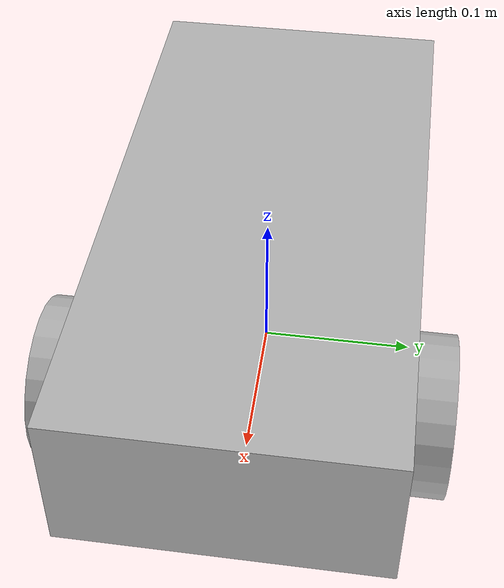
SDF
<?xml version='1.0'?>
<sdf version='1.4'>
  <model name="bitbot">

     <static>false</static>
    <link name='chassis'>
      <inertial>
        <mass>0.007</mass>
        <inertia>
          <ixx>0.0041667</ixx>       <!-- for a box: ixx = 0.083 * mass * (y*y + z*z) -->
          <ixy>0.0</ixy>         <!-- for a box: ixy = 0 -->
          <ixz>0.0</ixz>         <!-- for a box: ixz = 0 -->
          <iyy>0.0141667</iyy>       <!-- for a box: iyy = 0.083 * mass * (x*x + z*z) -->
          <iyz>0.0</iyz>         <!-- for a box: iyz = 0 -->
          <izz>0.0166667</izz>       <!-- for a box: izz = 0.083 * mass * (x*x + y*y) -->
        </inertia>
      </inertial>

      <pose>0 0 .075 0 0 0</pose>
      <collision name='collision'>
        <geometry>
          <box>
            <size>.4 .2 .1</size>
          </box>
        </geometry>
      </collision>
      <visual name='visual'>
        <geometry>
          <box>
            <size>.4 .2 .1</size>
          </box>
        </geometry>
      </visual>

      <collision name='caster_collision'>
        <pose>-0.15 0 -0.05 0 0 0</pose>
        <geometry>
          <sphere>
            <radius>.025</radius>
          </sphere>
        </geometry>

        <surface>
          <friction>
            <ode>
              <mu>0</mu>
              <mu2>0</mu2>
              <slip1>1.0</slip1>
              <slip2>1.0</slip2>
            </ode>
          </friction>
        </surface>
      </collision>

      <visual name='caster_visual'>
        <pose>-0.15 0 -0.05 0 0 0</pose>
        <geometry>
          <sphere>
            <radius>.025</radius>
          </sphere>
        </geometry>
      </visual>
    </link>

    <link name="left_wheel">
      <pose>0.1 0.1125 0.05 0 1.5707 1.5707</pose>
      <inertial>
          <mass>0.2</mass>
          <inertia>
            <ixx>0.000677083</ixx>
            <iyy>0.000677083</iyy>
            <izz>0.0003125</izz>
            <ixy>0</ixy>
            <ixz>0</ixz>
            <iyz>0</iyz>
          </inertia>
        </inertial>

      <collision name="collision">
        <geometry>
          <cylinder>
            <radius>.05</radius>
            <length>.025</length>
          </cylinder>
        </geometry>
      </collision>
      <visual name="visual">
        <geometry>
          <cylinder>
            <radius>.05</radius>
            <length>.025</length>
          </cylinder>
        </geometry>
      </visual>
    </link>
    <link name="right_wheel">
      <pose>0.1 -0.1125 0.05 0 1.5707 1.5707</pose>
      <inertial>
          <mass>0.2</mass>
          <inertia>
            <ixx>0.000677083</ixx>
            <iyy>0.000677083</iyy>
            <izz>0.0003125</izz>
            <ixy>0</ixy>
            <ixz>0</ixz>
            <iyz>0</iyz>
          </inertia>
        </inertial>
        <collision name="collision">
        <geometry>
          <cylinder>
            <radius>.05</radius>
            <length>.025</length>
          </cylinder>
        </geometry>
      </collision>
      <visual name="visual">
        <geometry>
          <cylinder>
            <radius>.05</radius>
            <length>.025</length>
          </cylinder>
        </geometry>
      </visual>
    </link>
    <joint type="revolute" name="left_wheel_joint">
      <pose>0 0 -0.0125 0 0 0</pose>
      <child>left_wheel</child>
      <parent>chassis</parent>
      <axis>
        <xyz>0 1 0</xyz>
      </axis>
    </joint>

    <joint type="revolute" name="right_wheel_joint">
      <pose>0 0 0.0125 0 0 0</pose>
      <child>right_wheel</child>
      <parent>chassis</parent>
      <axis>
        <xyz>0 1 0</xyz>
      </axis>
    </joint>

<plugin name="differential_drive_controller" filename="libgazebo_ros_diff_drive.so">
    <alwaysOn>true</alwaysOn>
    <updateRate>20</updateRate>
    <leftJoint>right_wheel_joint</leftJoint>
    <rightJoint>left_wheel_joint</rightJoint>
    <wheelSeparation>0.225</wheelSeparation>
    <wheelDiameter>0.1</wheelDiameter>
    <torque>1</torque>
    <commandTopic>cmd_vel</commandTopic>
    <odometryTopic>odom</odometryTopic>
    <odometryFrame>odom</odometryFrame>
    <robotBaseFrame>base_footprint</robotBaseFrame>
  </plugin>

  </model>
</sdf>
